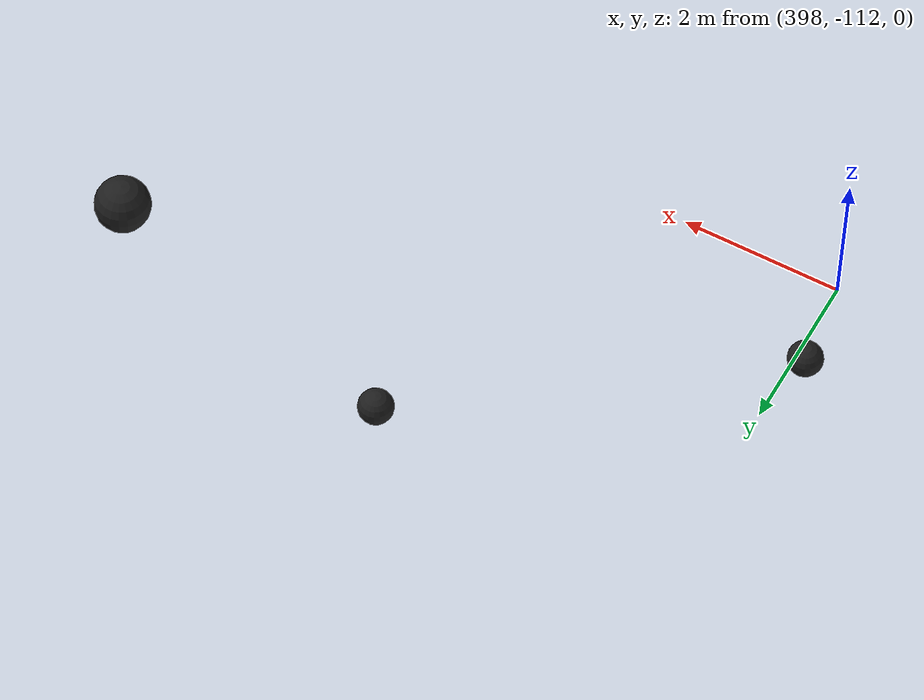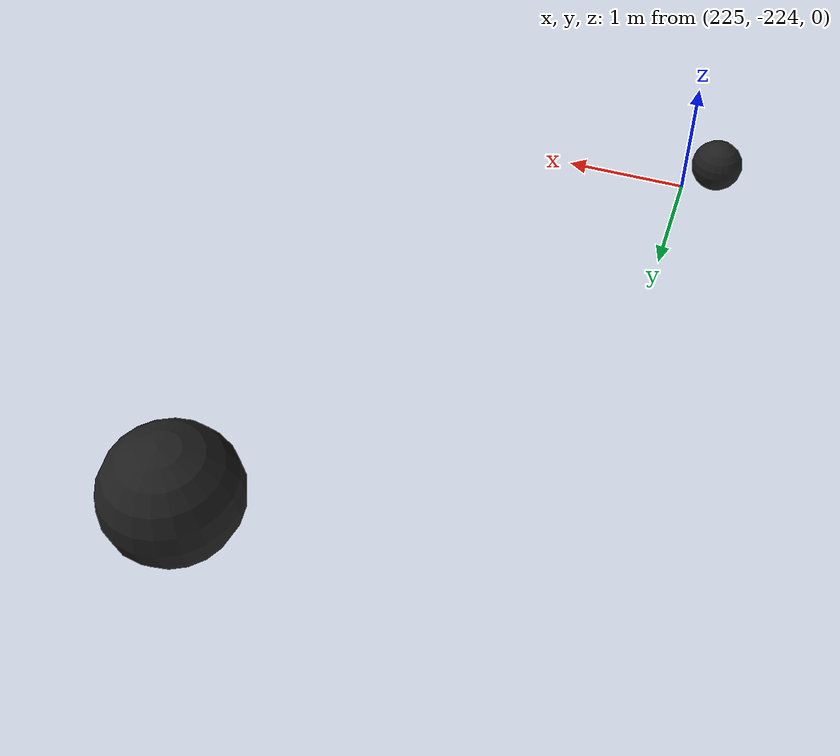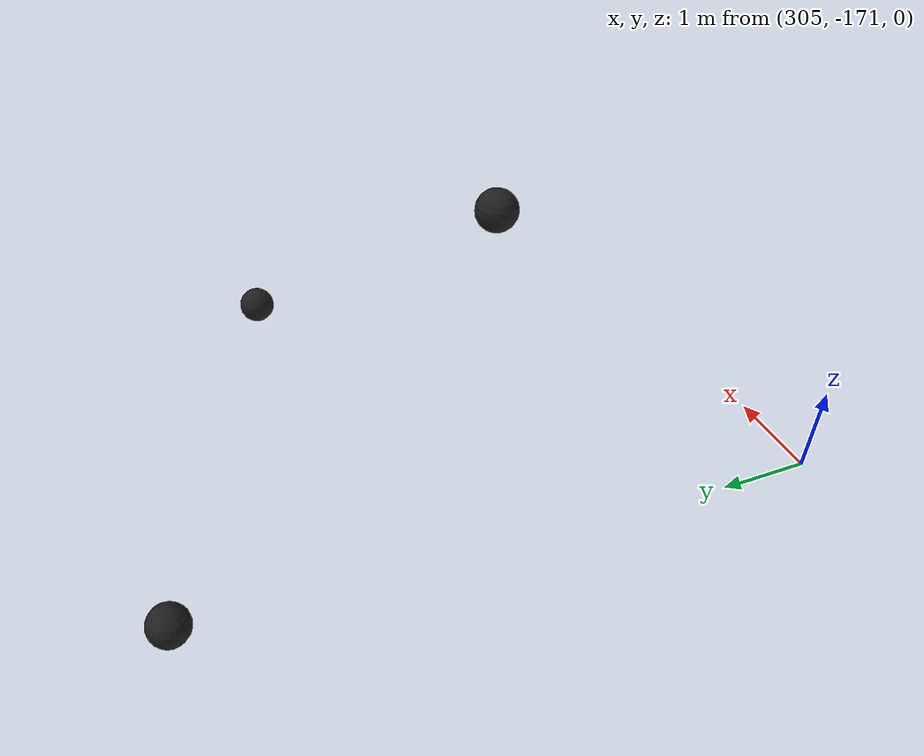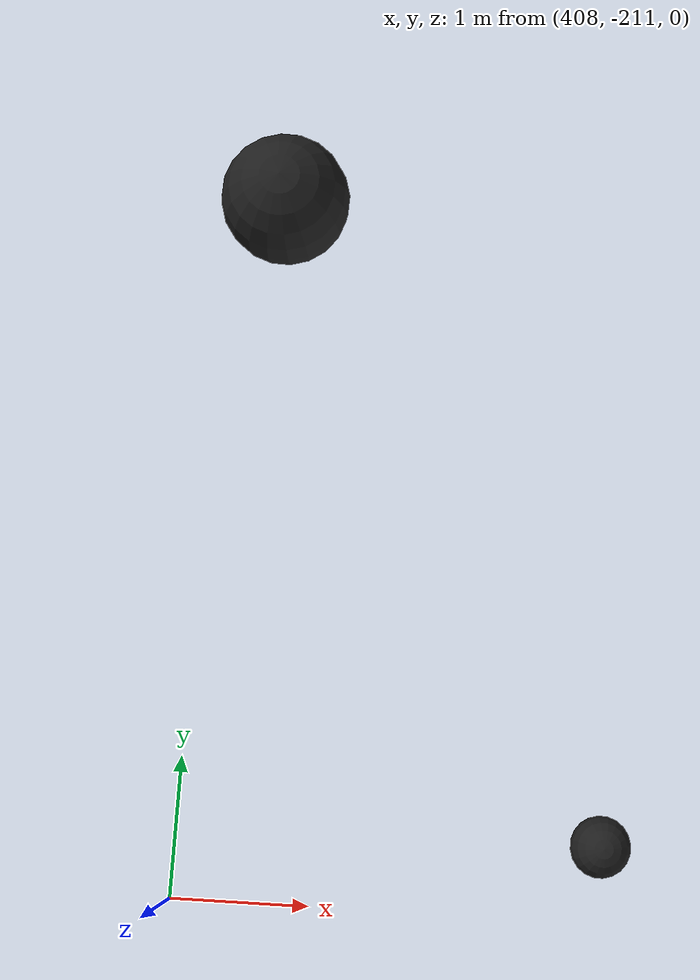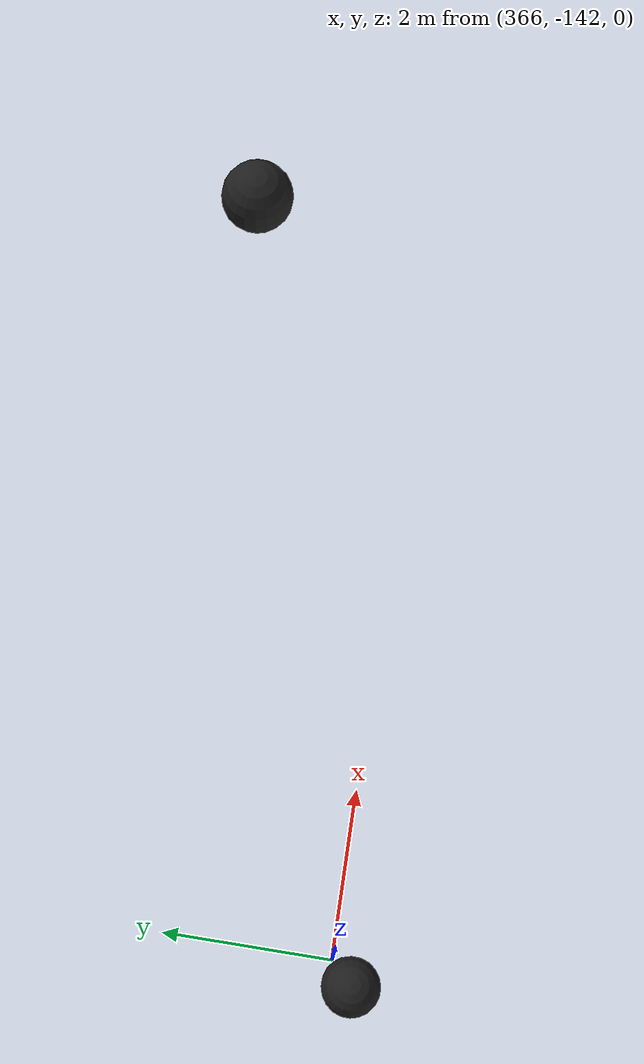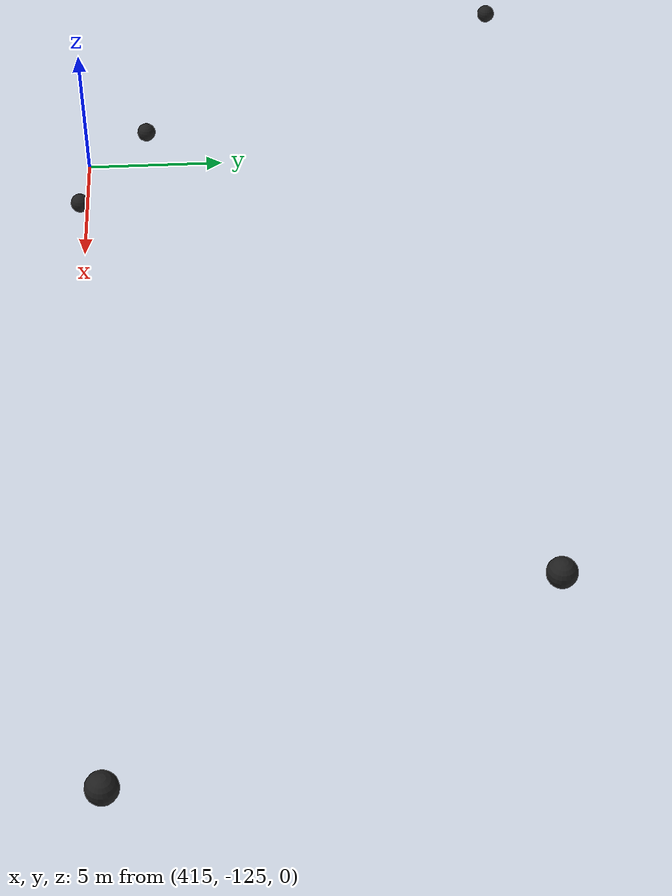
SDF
<sdf version="1.6">
 <world name="marina">
  <scene>
   <sky><clouds><speed>12</speed></clouds></sky>
   <grid>0</grid>
   <origin_visual>0</origin_visual>
   <ambient>0.4 0.4 0.4 1</ambient>
   <background>0.7 0.7 0.7 1</background>
   <shadows>1</shadows>
  </scene>
  <spherical_coordinates>
   <surface_model>EARTH_WGS84</surface_model>
   <world_frame_orientation>ENU</world_frame_orientation>
   <latitude_deg>44.0953</latitude_deg>
   <longitude_deg>9.82344</longitude_deg>
   <elevation>0</elevation>
   <heading_deg>0</heading_deg>
  </spherical_coordinates>
  <light name="sun" type="directional">
   <pose>0 0 10 0 -0 0</pose>
   <diffuse>0.8 0.8 0.8 1</diffuse>
   <specular>0.2 0.2 0.2 1</specular>
   <attenuation>
    <range>1000</range>
    <constant>0.9</constant>
    <linear>0.01</linear>
    <quadratic>0.001</quadratic>
   </attenuation>
   <direction>-0.5 0.1 -0.9</direction>
  </light>
  <plugin name="wind" filename="libusv_gazebo_wind_plugin.so">
   <wind_obj>
    <name>cora</name>
    <link_name>base_link</link_name>
    <coeff_vector>0.5 0.5 0.33</coeff_vector>
   </wind_obj>
   <wind_direction>270</wind_direction>
   <wind_mean_velocity>0</wind_mean_velocity>
   <var_wind_gain_constants>0</var_wind_gain_constants>
   <var_wind_time_constants>1</var_wind_time_constants>
   <update_rate>10</update_rate>
   <topic_wind_speed>/vorc/debug/wind/speed</topic_wind_speed>
   <topic_wind_direction>/vorc/debug/wind/direction</topic_wind_direction>
  </plugin>
  <gravity>0 0 -9.8</gravity>
  <magnetic_field>6e-06 2.3e-05 -4.2e-05</magnetic_field>
  <atmosphere type="adiabatic"/>
  <physics name="default_physics" default="0" type="ode">
   <max_step_size>0.001</max_step_size>
   <real_time_factor>1</real_time_factor>
   <real_time_update_rate>1000</real_time_update_rate>
  </physics>
  <model name="robotx_obstacle_course">
   <static>0</static>
   <link name="polyform_a3_0::base_link">
    <inertial>
     <mass>3.1</mass>
     <inertia><ixx>1</ixx><ixy>0</ixy><ixz>0</ixz><iyy>1</iyy><iyz>0</iyz><izz>1</izz></inertia>
    </inertial>
    <visual name="visual">
     <geometry><sphere><radius>0.216</radius></sphere></geometry>
     <material>
      <script><uri>file://media/materials/scripts/gazebo.material</uri><name>Gazebo/Black</name></script>
     </material>
    </visual>
    <collision name="collision"><geometry><sphere><radius>0.216</radius></sphere></geometry></collision>
    <pose>56.8485 59.2615 0 0 -0 0</pose>
   </link>
   <plugin name="BuoyancyPlugin" filename="libbuoyancy_gazebo_plugin.so">
    <wave_model>ocean_waves</wave_model>
    <fluid_density>1000</fluid_density>
    <fluid_level>0.0</fluid_level>
    <linear_drag>20.0</linear_drag>
    <angular_drag>2.0</angular_drag>
    <buoyancy name="buoyancy">
     <link_name>polyform_a3_0::base_link</link_name>
     <geometry><sphere><radius>0.216</radius></sphere></geometry>
    </buoyancy>
   </plugin>
   <static>0</static>
   <link name="polyform_a3_1::base_link">
    <inertial>
     <mass>3.1</mass>
     <inertia><ixx>1</ixx><ixy>0</ixy><ixz>0</ixz><iyy>1</iyy><iyz>0</iyz><izz>1</izz></inertia>
    </inertial>
    <visual name="visual">
     <geometry><sphere><radius>0.216</radius></sphere></geometry>
     <material>
      <script><uri>file://media/materials/scripts/gazebo.material</uri><name>Gazebo/Black</name></script>
     </material>
    </visual>
    <collision name="collision"><geometry><sphere><radius>0.216</radius></sphere></geometry></collision>
    <pose>56.9804 8.39663 0 0 -0 0</pose>
   </link>
   <plugin name="BuoyancyPlugin" filename="libbuoyancy_gazebo_plugin.so">
    <wave_model>ocean_waves</wave_model>
    <fluid_density>1000</fluid_density>
    <fluid_level>0.0</fluid_level>
    <linear_drag>20.0</linear_drag>
    <angular_drag>2.0</angular_drag>
    <buoyancy name="buoyancy">
     <link_name>polyform_a3_1::base_link</link_name>
     <geometry><sphere><radius>0.216</radius></sphere></geometry>
    </buoyancy>
   </plugin>
   <static>0</static>
   <link name="polyform_a3_2::base_link">
    <inertial>
     <mass>3.1</mass>
     <inertia><ixx>1</ixx><ixy>0</ixy><ixz>0</ixz><iyy>1</iyy><iyz>0</iyz><izz>1</izz></inertia>
    </inertial>
    <visual name="visual">
     <geometry><sphere><radius>0.216</radius></sphere></geometry>
     <material>
      <script><uri>file://media/materials/scripts/gazebo.material</uri><name>Gazebo/Black</name></script>
     </material>
    </visual>
    <collision name="collision"><geometry><sphere><radius>0.216</radius></sphere></geometry></collision>
    <pose>-39.9569 -59.638 0 0 -0 0</pose>
   </link>
   <plugin name="BuoyancyPlugin" filename="libbuoyancy_gazebo_plugin.so">
    <wave_model>ocean_waves</wave_model>
    <fluid_density>1000</fluid_density>
    <fluid_level>0.0</fluid_level>
    <linear_drag>20.0</linear_drag>
    <angular_drag>2.0</angular_drag>
    <buoyancy name="buoyancy">
     <link_name>polyform_a3_2::base_link</link_name>
     <geometry><sphere><radius>0.216</radius></sphere></geometry>
    </buoyancy>
   </plugin>
   <static>0</static>
   <link name="polyform_a3_3::base_link">
    <inertial>
     <mass>3.1</mass>
     <inertia><ixx>1</ixx><ixy>0</ixy><ixz>0</ixz><iyy>1</iyy><iyz>0</iyz><izz>1</izz></inertia>
    </inertial>
    <visual name="visual">
     <geometry><sphere><radius>0.216</radius></sphere></geometry>
     <material>
      <script><uri>file://media/materials/scripts/gazebo.material</uri><name>Gazebo/Black</name></script>
     </material>
    </visual>
    <collision name="collision"><geometry><sphere><radius>0.216</radius></sphere></geometry></collision>
    <pose>40.5936 0.420856 0 0 -0 0</pose>
   </link>
   <plugin name="BuoyancyPlugin" filename="libbuoyancy_gazebo_plugin.so">
    <wave_model>ocean_waves</wave_model>
    <fluid_density>1000</fluid_density>
    <fluid_level>0.0</fluid_level>
    <linear_drag>20.0</linear_drag>
    <angular_drag>2.0</angular_drag>
    <buoyancy name="buoyancy">
     <link_name>polyform_a3_3::base_link</link_name>
     <geometry><sphere><radius>0.216</radius></sphere></geometry>
    </buoyancy>
   </plugin>
   <static>0</static>
   <link name="polyform_a3_4::base_link">
    <inertial>
     <mass>3.1</mass>
     <inertia><ixx>1</ixx><ixy>0</ixy><ixz>0</ixz><iyy>1</iyy><iyz>0</iyz><izz>1</izz></inertia>
    </inertial>
    <visual name="visual">
     <geometry><sphere><radius>0.216</radius></sphere></geometry>
     <material>
      <script><uri>file://media/materials/scripts/gazebo.material</uri><name>Gazebo/Black</name></script>
     </material>
    </visual>
    <collision name="collision"><geometry><sphere><radius>0.216</radius></sphere></geometry></collision>
    <pose>45.1472 -1.58775 0 0 -0 0</pose>
   </link>
   <plugin name="BuoyancyPlugin" filename="libbuoyancy_gazebo_plugin.so">
    <wave_model>ocean_waves</wave_model>
    <fluid_density>1000</fluid_density>
    <fluid_level>0.0</fluid_level>
    <linear_drag>20.0</linear_drag>
    <angular_drag>2.0</angular_drag>
    <buoyancy name="buoyancy">
     <link_name>polyform_a3_4::base_link</link_name>
     <geometry><sphere><radius>0.216</radius></sphere></geometry>
    </buoyancy>
   </plugin>
   <static>0</static>
   <link name="polyform_a5_0::base_link">
    <inertial>
     <mass>8.98</mass>
     <inertia><ixx>1</ixx><ixy>0</ixy><ixz>0</ixz><iyy>1</iyy><iyz>0</iyz><izz>1</izz></inertia>
    </inertial>
    <visual name="visual">
     <geometry><sphere><radius>0.343</radius></sphere></geometry>
     <material>
      <script><uri>file://media/materials/scripts/gazebo.material</uri><name>Gazebo/Black</name></script>
     </material>
    </visual>
    <collision name="collision"><geometry><sphere><radius>0.343</radius></sphere></geometry></collision>
    <pose>37.4966 -23.6252 0 0 -0 0</pose>
   </link>
   <plugin name="BuoyancyPlugin" filename="libbuoyancy_gazebo_plugin.so">
    <wave_model>ocean_waves</wave_model>
    <fluid_density>1000</fluid_density>
    <fluid_level>0.0</fluid_level>
    <linear_drag>20.0</linear_drag>
    <angular_drag>2.0</angular_drag>
    <buoyancy name="buoyancy">
     <link_name>polyform_a5_0::base_link</link_name>
     <geometry><sphere><radius>0.343</radius></sphere></geometry>
    </buoyancy>
   </plugin>
   <static>0</static>
   <link name="polyform_a5_1::base_link">
    <inertial>
     <mass>8.98</mass>
     <inertia><ixx>1</ixx><ixy>0</ixy><ixz>0</ixz><iyy>1</iyy><iyz>0</iyz><izz>1</izz></inertia>
    </inertial>
    <visual name="visual">
     <geometry><sphere><radius>0.343</radius></sphere></geometry>
     <material>
      <script><uri>file://media/materials/scripts/gazebo.material</uri><name>Gazebo/Black</name></script>
     </material>
    </visual>
    <collision name="collision"><geometry><sphere><radius>0.343</radius></sphere></geometry></collision>
    <pose>46.2135 -5.59469 0 0 -0 0</pose>
   </link>
   <plugin name="BuoyancyPlugin" filename="libbuoyancy_gazebo_plugin.so">
    <wave_model>ocean_waves</wave_model>
    <fluid_density>1000</fluid_density>
    <fluid_level>0.0</fluid_level>
    <linear_drag>20.0</linear_drag>
    <angular_drag>2.0</angular_drag>
    <buoyancy name="buoyancy">
     <link_name>polyform_a5_1::base_link</link_name>
     <geometry><sphere><radius>0.343</radius></sphere></geometry>
    </buoyancy>
   </plugin>
   <static>0</static>
   <link name="polyform_a5_2::base_link">
    <inertial>
     <mass>8.98</mass>
     <inertia><ixx>1</ixx><ixy>0</ixy><ixz>0</ixz><iyy>1</iyy><iyz>0</iyz><izz>1</izz></inertia>
    </inertial>
    <visual name="visual">
     <geometry><sphere><radius>0.343</radius></sphere></geometry>
     <material>
      <script><uri>file://media/materials/scripts/gazebo.material</uri><name>Gazebo/Black</name></script>
     </material>
    </visual>
    <collision name="collision"><geometry><sphere><radius>0.343</radius></sphere></geometry></collision>
    <pose>24.5769 30.3481 0 0 -0 0</pose>
   </link>
   <plugin name="BuoyancyPlugin" filename="libbuoyancy_gazebo_plugin.so">
    <wave_model>ocean_waves</wave_model>
    <fluid_density>1000</fluid_density>
    <fluid_level>0.0</fluid_level>
    <linear_drag>20.0</linear_drag>
    <angular_drag>2.0</angular_drag>
    <buoyancy name="buoyancy">
     <link_name>polyform_a5_2::base_link</link_name>
     <geometry><sphere><radius>0.343</radius></sphere></geometry>
    </buoyancy>
   </plugin>
   <static>0</static>
   <link name="polyform_a5_3::base_link">
    <inertial>
     <mass>8.98</mass>
     <inertia><ixx>1</ixx><ixy>0</ixy><ixz>0</ixz><iyy>1</iyy><iyz>0</iyz><izz>1</izz></inertia>
    </inertial>
    <visual name="visual">
     <geometry><sphere><radius>0.343</radius></sphere></geometry>
     <material>
      <script><uri>file://media/materials/scripts/gazebo.material</uri><name>Gazebo/Black</name></script>
     </material>
    </visual>
    <collision name="collision"><geometry><sphere><radius>0.343</radius></sphere></geometry></collision>
    <pose>37.5737 -18.8336 0 0 -0 0</pose>
   </link>
   <plugin name="BuoyancyPlugin" filename="libbuoyancy_gazebo_plugin.so">
    <wave_model>ocean_waves</wave_model>
    <fluid_density>1000</fluid_density>
    <fluid_level>0.0</fluid_level>
    <linear_drag>20.0</linear_drag>
    <angular_drag>2.0</angular_drag>
    <buoyancy name="buoyancy">
     <link_name>polyform_a5_3::base_link</link_name>
     <geometry><sphere><radius>0.343</radius></sphere></geometry>
    </buoyancy>
   </plugin>
   <static>0</static>
   <link name="polyform_a5_4::base_link">
    <inertial>
     <mass>8.98</mass>
     <inertia><ixx>1</ixx><ixy>0</ixy><ixz>0</ixz><iyy>1</iyy><iyz>0</iyz><izz>1</izz></inertia>
    </inertial>
    <visual name="visual">
     <geometry><sphere><radius>0.343</radius></sphere></geometry>
     <material>
      <script><uri>file://media/materials/scripts/gazebo.material</uri><name>Gazebo/Black</name></script>
     </material>
    </visual>
    <collision name="collision"><geometry><sphere><radius>0.343</radius></sphere></geometry></collision>
    <pose>-2.49572 13.1619 0 0 -0 0</pose>
   </link>
   <plugin name="BuoyancyPlugin" filename="libbuoyancy_gazebo_plugin.so">
    <wave_model>ocean_waves</wave_model>
    <fluid_density>1000</fluid_density>
    <fluid_level>0.0</fluid_level>
    <linear_drag>20.0</linear_drag>
    <angular_drag>2.0</angular_drag>
    <buoyancy name="buoyancy">
     <link_name>polyform_a5_4::base_link</link_name>
     <geometry><sphere><radius>0.343</radius></sphere></geometry>
    </buoyancy>
   </plugin>
   <static>0</static>
   <link name="polyform_a7_0::base_link">
    <inertial>
     <mass>24.49</mass>
     <inertia><ixx>1</ixx><ixy>0</ixy><ixz>0</ixz><iyy>1</iyy><iyz>0</iyz><izz>1</izz></inertia>
    </inertial>
    <visual name="visual">
     <geometry><sphere><radius>0.4955</radius></sphere></geometry>
     <material>
      <script><uri>file://media/materials/scripts/gazebo.material</uri><name>Gazebo/Black</name></script>
     </material>
    </visual>
    <collision name="collision"><geometry><sphere><radius>0.4955</radius></sphere></geometry></collision>
    <pose>59.6286 -32.2044 0 0 -0 0</pose>
   </link>
   <plugin name="BuoyancyPlugin" filename="libbuoyancy_gazebo_plugin.so">
    <wave_model>ocean_waves</wave_model>
    <fluid_density>1000</fluid_density>
    <fluid_level>0.0</fluid_level>
    <linear_drag>20.0</linear_drag>
    <angular_drag>2.0</angular_drag>
    <buoyancy name="buoyancy">
     <link_name>polyform_a7_0::base_link</link_name>
     <geometry><sphere><radius>0.4955</radius></sphere></geometry>
    </buoyancy>
   </plugin>
   <static>0</static>
   <link name="polyform_a7_1::base_link">
    <inertial>
     <mass>24.49</mass>
     <inertia><ixx>1</ixx><ixy>0</ixy><ixz>0</ixz><iyy>1</iyy><iyz>0</iyz><izz>1</izz></inertia>
    </inertial>
    <visual name="visual">
     <geometry><sphere><radius>0.4955</radius></sphere></geometry>
     <material>
      <script><uri>file://media/materials/scripts/gazebo.material</uri><name>Gazebo/Black</name></script>
     </material>
    </visual>
    <collision name="collision"><geometry><sphere><radius>0.4955</radius></sphere></geometry></collision>
    <pose>51.0184 -44.8771 0 0 -0 0</pose>
   </link>
   <plugin name="BuoyancyPlugin" filename="libbuoyancy_gazebo_plugin.so">
    <wave_model>ocean_waves</wave_model>
    <fluid_density>1000</fluid_density>
    <fluid_level>0.0</fluid_level>
    <linear_drag>20.0</linear_drag>
    <angular_drag>2.0</angular_drag>
    <buoyancy name="buoyancy">
     <link_name>polyform_a7_1::base_link</link_name>
     <geometry><sphere><radius>0.4955</radius></sphere></geometry>
    </buoyancy>
   </plugin>
   <static>0</static>
   <link name="polyform_a7_2::base_link">
    <inertial>
     <mass>24.49</mass>
     <inertia><ixx>1</ixx><ixy>0</ixy><ixz>0</ixz><iyy>1</iyy><iyz>0</iyz><izz>1</izz></inertia>
    </inertial>
    <visual name="visual">
     <geometry><sphere><radius>0.4955</radius></sphere></geometry>
     <material>
      <script><uri>file://media/materials/scripts/gazebo.material</uri><name>Gazebo/Black</name></script>
     </material>
    </visual>
    <collision name="collision"><geometry><sphere><radius>0.4955</radius></sphere></geometry></collision>
    <pose>-37.1238 -55.0781 0 0 -0 0</pose>
   </link>
   <plugin name="BuoyancyPlugin" filename="libbuoyancy_gazebo_plugin.so">
    <wave_model>ocean_waves</wave_model>
    <fluid_density>1000</fluid_density>
    <fluid_level>0.0</fluid_level>
    <linear_drag>20.0</linear_drag>
    <angular_drag>2.0</angular_drag>
    <buoyancy name="buoyancy">
     <link_name>polyform_a7_2::base_link</link_name>
     <geometry><sphere><radius>0.4955</radius></sphere></geometry>
    </buoyancy>
   </plugin>
   <static>0</static>
   <link name="polyform_a7_3::base_link">
    <inertial>
     <mass>24.49</mass>
     <inertia><ixx>1</ixx><ixy>0</ixy><ixz>0</ixz><iyy>1</iyy><iyz>0</iyz><izz>1</izz></inertia>
    </inertial>
    <visual name="visual">
     <geometry><sphere><radius>0.4955</radius></sphere></geometry>
     <material>
      <script><uri>file://media/materials/scripts/gazebo.material</uri><name>Gazebo/Black</name></script>
     </material>
    </visual>
    <collision name="collision"><geometry><sphere><radius>0.4955</radius></sphere></geometry></collision>
    <pose>4.82024 5.70283 0 0 -0 0</pose>
   </link>
   <plugin name="BuoyancyPlugin" filename="libbuoyancy_gazebo_plugin.so">
    <wave_model>ocean_waves</wave_model>
    <fluid_density>1000</fluid_density>
    <fluid_level>0.0</fluid_level>
    <linear_drag>20.0</linear_drag>
    <angular_drag>2.0</angular_drag>
    <buoyancy name="buoyancy">
     <link_name>polyform_a7_3::base_link</link_name>
     <geometry><sphere><radius>0.4955</radius></sphere></geometry>
    </buoyancy>
   </plugin>
   <static>0</static>
   <link name="polyform_a7_4::base_link">
    <inertial>
     <mass>24.49</mass>
     <inertia><ixx>1</ixx><ixy>0</ixy><ixz>0</ixz><iyy>1</iyy><iyz>0</iyz><izz>1</izz></inertia>
    </inertial>
    <visual name="visual">
     <geometry><sphere><radius>0.4955</radius></sphere></geometry>
     <material>
      <script><uri>file://media/materials/scripts/gazebo.material</uri><name>Gazebo/Black</name></script>
     </material>
    </visual>
    <collision name="collision"><geometry><sphere><radius>0.4955</radius></sphere></geometry></collision>
    <pose>-10.727 -31.6245 0 0 -0 0</pose>
   </link>
   <plugin name="BuoyancyPlugin" filename="libbuoyancy_gazebo_plugin.so">
    <wave_model>ocean_waves</wave_model>
    <fluid_density>1000</fluid_density>
    <fluid_level>0.0</fluid_level>
    <linear_drag>20.0</linear_drag>
    <angular_drag>2.0</angular_drag>
    <buoyancy name="buoyancy">
     <link_name>polyform_a7_4::base_link</link_name>
     <geometry><sphere><radius>0.4955</radius></sphere></geometry>
    </buoyancy>
   </plugin>
   <pose>264.708 -164.565 0.143229 0 -0 0</pose>
  </model>
  <model name="robotx_obstacle_course_0">
   <static>0</static>
   <link name="polyform_a3_0::base_link">
    <inertial>
     <mass>3.1</mass>
     <inertia><ixx>1</ixx><ixy>0</ixy><ixz>0</ixz><iyy>1</iyy><iyz>0</iyz><izz>1</izz></inertia>
    </inertial>
    <visual name="visual">
     <geometry><sphere><radius>0.216</radius></sphere></geometry>
     <material>
      <script><uri>file://media/materials/scripts/gazebo.material</uri><name>Gazebo/Black</name></script>
     </material>
    </visual>
    <collision name="collision"><geometry><sphere><radius>0.216</radius></sphere></geometry></collision>
    <pose>56.8485 59.2615 0 0 -0 0</pose>
   </link>
   <plugin name="BuoyancyPlugin" filename="libbuoyancy_gazebo_plugin.so">
    <wave_model>ocean_waves</wave_model>
    <fluid_density>1000</fluid_density>
    <fluid_level>0.0</fluid_level>
    <linear_drag>20.0</linear_drag>
    <angular_drag>2.0</angular_drag>
    <buoyancy name="buoyancy">
     <link_name>polyform_a3_0::base_link</link_name>
     <geometry><sphere><radius>0.216</radius></sphere></geometry>
    </buoyancy>
   </plugin>
   <static>0</static>
   <link name="polyform_a3_1::base_link">
    <inertial>
     <mass>3.1</mass>
     <inertia><ixx>1</ixx><ixy>0</ixy><ixz>0</ixz><iyy>1</iyy><iyz>0</iyz><izz>1</izz></inertia>
    </inertial>
    <visual name="visual">
     <geometry><sphere><radius>0.216</radius></sphere></geometry>
     <material>
      <script><uri>file://media/materials/scripts/gazebo.material</uri><name>Gazebo/Black</name></script>
     </material>
    </visual>
    <collision name="collision"><geometry><sphere><radius>0.216</radius></sphere></geometry></collision>
    <pose>56.9804 8.39663 0 0 -0 0</pose>
   </link>
   <plugin name="BuoyancyPlugin" filename="libbuoyancy_gazebo_plugin.so">
    <wave_model>ocean_waves</wave_model>
    <fluid_density>1000</fluid_density>
    <fluid_level>0.0</fluid_level>
    <linear_drag>20.0</linear_drag>
    <angular_drag>2.0</angular_drag>
    <buoyancy name="buoyancy">
     <link_name>polyform_a3_1::base_link</link_name>
     <geometry><sphere><radius>0.216</radius></sphere></geometry>
    </buoyancy>
   </plugin>
   <static>0</static>
   <link name="polyform_a3_2::base_link">
    <inertial>
     <mass>3.1</mass>
     <inertia><ixx>1</ixx><ixy>0</ixy><ixz>0</ixz><iyy>1</iyy><iyz>0</iyz><izz>1</izz></inertia>
    </inertial>
    <visual name="visual">
     <geometry><sphere><radius>0.216</radius></sphere></geometry>
     <material>
      <script><uri>file://media/materials/scripts/gazebo.material</uri><name>Gazebo/Black</name></script>
     </material>
    </visual>
    <collision name="collision"><geometry><sphere><radius>0.216</radius></sphere></geometry></collision>
    <pose>-39.9569 -59.638 0 0 -0 0</pose>
   </link>
   <plugin name="BuoyancyPlugin" filename="libbuoyancy_gazebo_plugin.so">
    <wave_model>ocean_waves</wave_model>
    <fluid_density>1000</fluid_density>
    <fluid_level>0.0</fluid_level>
    <linear_drag>20.0</linear_drag>
    <angular_drag>2.0</angular_drag>
    <buoyancy name="buoyancy">
     <link_name>polyform_a3_2::base_link</link_name>
     <geometry><sphere><radius>0.216</radius></sphere></geometry>
    </buoyancy>
   </plugin>
   <static>0</static>
   <link name="polyform_a3_3::base_link">
    <inertial>
     <mass>3.1</mass>
     <inertia><ixx>1</ixx><ixy>0</ixy><ixz>0</ixz><iyy>1</iyy><iyz>0</iyz><izz>1</izz></inertia>
    </inertial>
    <visual name="visual">
     <geometry><sphere><radius>0.216</radius></sphere></geometry>
     <material>
      <script><uri>file://media/materials/scripts/gazebo.material</uri><name>Gazebo/Black</name></script>
     </material>
    </visual>
    <collision name="collision"><geometry><sphere><radius>0.216</radius></sphere></geometry></collision>
    <pose>40.5936 0.420856 0 0 -0 0</pose>
   </link>
   <plugin name="BuoyancyPlugin" filename="libbuoyancy_gazebo_plugin.so">
    <wave_model>ocean_waves</wave_model>
    <fluid_density>1000</fluid_density>
    <fluid_level>0.0</fluid_level>
    <linear_drag>20.0</linear_drag>
    <angular_drag>2.0</angular_drag>
    <buoyancy name="buoyancy">
     <link_name>polyform_a3_3::base_link</link_name>
     <geometry><sphere><radius>0.216</radius></sphere></geometry>
    </buoyancy>
   </plugin>
   <static>0</static>
   <link name="polyform_a3_4::base_link">
    <inertial>
     <mass>3.1</mass>
     <inertia><ixx>1</ixx><ixy>0</ixy><ixz>0</ixz><iyy>1</iyy><iyz>0</iyz><izz>1</izz></inertia>
    </inertial>
    <visual name="visual">
     <geometry><sphere><radius>0.216</radius></sphere></geometry>
     <material>
      <script><uri>file://media/materials/scripts/gazebo.material</uri><name>Gazebo/Black</name></script>
     </material>
    </visual>
    <collision name="collision"><geometry><sphere><radius>0.216</radius></sphere></geometry></collision>
    <pose>45.1472 -1.58775 0 0 -0 0</pose>
   </link>
   <plugin name="BuoyancyPlugin" filename="libbuoyancy_gazebo_plugin.so">
    <wave_model>ocean_waves</wave_model>
    <fluid_density>1000</fluid_density>
    <fluid_level>0.0</fluid_level>
    <linear_drag>20.0</linear_drag>
    <angular_drag>2.0</angular_drag>
    <buoyancy name="buoyancy">
     <link_name>polyform_a3_4::base_link</link_name>
     <geometry><sphere><radius>0.216</radius></sphere></geometry>
    </buoyancy>
   </plugin>
   <static>0</static>
   <link name="polyform_a5_0::base_link">
    <inertial>
     <mass>8.98</mass>
     <inertia><ixx>1</ixx><ixy>0</ixy><ixz>0</ixz><iyy>1</iyy><iyz>0</iyz><izz>1</izz></inertia>
    </inertial>
    <visual name="visual">
     <geometry><sphere><radius>0.343</radius></sphere></geometry>
     <material>
      <script><uri>file://media/materials/scripts/gazebo.material</uri><name>Gazebo/Black</name></script>
     </material>
    </visual>
    <collision name="collision"><geometry><sphere><radius>0.343</radius></sphere></geometry></collision>
    <pose>37.4966 -23.6252 0 0 -0 0</pose>
   </link>
   <plugin name="BuoyancyPlugin" filename="libbuoyancy_gazebo_plugin.so">
    <wave_model>ocean_waves</wave_model>
    <fluid_density>1000</fluid_density>
    <fluid_level>0.0</fluid_level>
    <linear_drag>20.0</linear_drag>
    <angular_drag>2.0</angular_drag>
    <buoyancy name="buoyancy">
     <link_name>polyform_a5_0::base_link</link_name>
     <geometry><sphere><radius>0.343</radius></sphere></geometry>
    </buoyancy>
   </plugin>
   <static>0</static>
   <link name="polyform_a5_1::base_link">
    <inertial>
     <mass>8.98</mass>
     <inertia><ixx>1</ixx><ixy>0</ixy><ixz>0</ixz><iyy>1</iyy><iyz>0</iyz><izz>1</izz></inertia>
    </inertial>
    <visual name="visual">
     <geometry><sphere><radius>0.343</radius></sphere></geometry>
     <material>
      <script><uri>file://media/materials/scripts/gazebo.material</uri><name>Gazebo/Black</name></script>
     </material>
    </visual>
    <collision name="collision"><geometry><sphere><radius>0.343</radius></sphere></geometry></collision>
    <pose>46.2135 -5.59469 0 0 -0 0</pose>
   </link>
   <plugin name="BuoyancyPlugin" filename="libbuoyancy_gazebo_plugin.so">
    <wave_model>ocean_waves</wave_model>
    <fluid_density>1000</fluid_density>
    <fluid_level>0.0</fluid_level>
    <linear_drag>20.0</linear_drag>
    <angular_drag>2.0</angular_drag>
    <buoyancy name="buoyancy">
     <link_name>polyform_a5_1::base_link</link_name>
     <geometry><sphere><radius>0.343</radius></sphere></geometry>
    </buoyancy>
   </plugin>
   <static>0</static>
   <link name="polyform_a5_2::base_link">
    <inertial>
     <mass>8.98</mass>
     <inertia><ixx>1</ixx><ixy>0</ixy><ixz>0</ixz><iyy>1</iyy><iyz>0</iyz><izz>1</izz></inertia>
    </inertial>
    <visual name="visual">
     <geometry><sphere><radius>0.343</radius></sphere></geometry>
     <material>
      <script><uri>file://media/materials/scripts/gazebo.material</uri><name>Gazebo/Black</name></script>
     </material>
    </visual>
    <collision name="collision"><geometry><sphere><radius>0.343</radius></sphere></geometry></collision>
    <pose>24.5769 30.3481 0 0 -0 0</pose>
   </link>
   <plugin name="BuoyancyPlugin" filename="libbuoyancy_gazebo_plugin.so">
    <wave_model>ocean_waves</wave_model>
    <fluid_density>1000</fluid_density>
    <fluid_level>0.0</fluid_level>
    <linear_drag>20.0</linear_drag>
    <angular_drag>2.0</angular_drag>
    <buoyancy name="buoyancy">
     <link_name>polyform_a5_2::base_link</link_name>
     <geometry><sphere><radius>0.343</radius></sphere></geometry>
    </buoyancy>
   </plugin>
   <static>0</static>
   <link name="polyform_a5_3::base_link">
    <inertial>
     <mass>8.98</mass>
     <inertia><ixx>1</ixx><ixy>0</ixy><ixz>0</ixz><iyy>1</iyy><iyz>0</iyz><izz>1</izz></inertia>
    </inertial>
    <visual name="visual">
     <geometry><sphere><radius>0.343</radius></sphere></geometry>
     <material>
      <script><uri>file://media/materials/scripts/gazebo.material</uri><name>Gazebo/Black</name></script>
     </material>
    </visual>
    <collision name="collision"><geometry><sphere><radius>0.343</radius></sphere></geometry></collision>
    <pose>37.5737 -18.8336 0 0 -0 0</pose>
   </link>
   <plugin name="BuoyancyPlugin" filename="libbuoyancy_gazebo_plugin.so">
    <wave_model>ocean_waves</wave_model>
    <fluid_density>1000</fluid_density>
    <fluid_level>0.0</fluid_level>
    <linear_drag>20.0</linear_drag>
    <angular_drag>2.0</angular_drag>
    <buoyancy name="buoyancy">
     <link_name>polyform_a5_3::base_link</link_name>
     <geometry><sphere><radius>0.343</radius></sphere></geometry>
    </buoyancy>
   </plugin>
   <static>0</static>
   <link name="polyform_a5_4::base_link">
    <inertial>
     <mass>8.98</mass>
     <inertia><ixx>1</ixx><ixy>0</ixy><ixz>0</ixz><iyy>1</iyy><iyz>0</iyz><izz>1</izz></inertia>
    </inertial>
    <visual name="visual">
     <geometry><sphere><radius>0.343</radius></sphere></geometry>
     <material>
      <script><uri>file://media/materials/scripts/gazebo.material</uri><name>Gazebo/Black</name></script>
     </material>
    </visual>
    <collision name="collision"><geometry><sphere><radius>0.343</radius></sphere></geometry></collision>
    <pose>-2.49572 13.1619 0 0 -0 0</pose>
   </link>
   <plugin name="BuoyancyPlugin" filename="libbuoyancy_gazebo_plugin.so">
    <wave_model>ocean_waves</wave_model>
    <fluid_density>1000</fluid_density>
    <fluid_level>0.0</fluid_level>
    <linear_drag>20.0</linear_drag>
    <angular_drag>2.0</angular_drag>
    <buoyancy name="buoyancy">
     <link_name>polyform_a5_4::base_link</link_name>
     <geometry><sphere><radius>0.343</radius></sphere></geometry>
    </buoyancy>
   </plugin>
   <static>0</static>
   <link name="polyform_a7_0::base_link">
    <inertial>
     <mass>24.49</mass>
     <inertia><ixx>1</ixx><ixy>0</ixy><ixz>0</ixz><iyy>1</iyy><iyz>0</iyz><izz>1</izz></inertia>
    </inertial>
    <visual name="visual">
     <geometry><sphere><radius>0.4955</radius></sphere></geometry>
     <material>
      <script><uri>file://media/materials/scripts/gazebo.material</uri><name>Gazebo/Black</name></script>
     </material>
    </visual>
    <collision name="collision"><geometry><sphere><radius>0.4955</radius></sphere></geometry></collision>
    <pose>59.6286 -32.2044 0 0 -0 0</pose>
   </link>
   <plugin name="BuoyancyPlugin" filename="libbuoyancy_gazebo_plugin.so">
    <wave_model>ocean_waves</wave_model>
    <fluid_density>1000</fluid_density>
    <fluid_level>0.0</fluid_level>
    <linear_drag>20.0</linear_drag>
    <angular_drag>2.0</angular_drag>
    <buoyancy name="buoyancy">
     <link_name>polyform_a7_0::base_link</link_name>
     <geometry><sphere><radius>0.4955</radius></sphere></geometry>
    </buoyancy>
   </plugin>
   <static>0</static>
   <link name="polyform_a7_1::base_link">
    <inertial>
     <mass>24.49</mass>
     <inertia><ixx>1</ixx><ixy>0</ixy><ixz>0</ixz><iyy>1</iyy><iyz>0</iyz><izz>1</izz></inertia>
    </inertial>
    <visual name="visual">
     <geometry><sphere><radius>0.4955</radius></sphere></geometry>
     <material>
      <script><uri>file://media/materials/scripts/gazebo.material</uri><name>Gazebo/Black</name></script>
     </material>
    </visual>
    <collision name="collision"><geometry><sphere><radius>0.4955</radius></sphere></geometry></collision>
    <pose>51.0184 -44.8771 0 0 -0 0</pose>
   </link>
   <plugin name="BuoyancyPlugin" filename="libbuoyancy_gazebo_plugin.so">
    <wave_model>ocean_waves</wave_model>
    <fluid_density>1000</fluid_density>
    <fluid_level>0.0</fluid_level>
    <linear_drag>20.0</linear_drag>
    <angular_drag>2.0</angular_drag>
    <buoyancy name="buoyancy">
     <link_name>polyform_a7_1::base_link</link_name>
     <geometry><sphere><radius>0.4955</radius></sphere></geometry>
    </buoyancy>
   </plugin>
   <static>0</static>
   <link name="polyform_a7_2::base_link">
    <inertial>
     <mass>24.49</mass>
     <inertia><ixx>1</ixx><ixy>0</ixy><ixz>0</ixz><iyy>1</iyy><iyz>0</iyz><izz>1</izz></inertia>
    </inertial>
    <visual name="visual">
     <geometry><sphere><radius>0.4955</radius></sphere></geometry>
     <material>
      <script><uri>file://media/materials/scripts/gazebo.material</uri><name>Gazebo/Black</name></script>
     </material>
    </visual>
    <collision name="collision"><geometry><sphere><radius>0.4955</radius></sphere></geometry></collision>
    <pose>-37.1238 -55.0781 0 0 -0 0</pose>
   </link>
   <plugin name="BuoyancyPlugin" filename="libbuoyancy_gazebo_plugin.so">
    <wave_model>ocean_waves</wave_model>
    <fluid_density>1000</fluid_density>
    <fluid_level>0.0</fluid_level>
    <linear_drag>20.0</linear_drag>
    <angular_drag>2.0</angular_drag>
    <buoyancy name="buoyancy">
     <link_name>polyform_a7_2::base_link</link_name>
     <geometry><sphere><radius>0.4955</radius></sphere></geometry>
    </buoyancy>
   </plugin>
   <static>0</static>
   <link name="polyform_a7_3::base_link">
    <inertial>
     <mass>24.49</mass>
     <inertia><ixx>1</ixx><ixy>0</ixy><ixz>0</ixz><iyy>1</iyy><iyz>0</iyz><izz>1</izz></inertia>
    </inertial>
    <visual name="visual">
     <geometry><sphere><radius>0.4955</radius></sphere></geometry>
     <material>
      <script><uri>file://media/materials/scripts/gazebo.material</uri><name>Gazebo/Black</name></script>
     </material>
    </visual>
    <collision name="collision"><geometry><sphere><radius>0.4955</radius></sphere></geometry></collision>
    <pose>4.82024 5.70283 0 0 -0 0</pose>
   </link>
   <plugin name="BuoyancyPlugin" filename="libbuoyancy_gazebo_plugin.so">
    <wave_model>ocean_waves</wave_model>
    <fluid_density>1000</fluid_density>
    <fluid_level>0.0</fluid_level>
    <linear_drag>20.0</linear_drag>
    <angular_drag>2.0</angular_drag>
    <buoyancy name="buoyancy">
     <link_name>polyform_a7_3::base_link</link_name>
     <geometry><sphere><radius>0.4955</radius></sphere></geometry>
    </buoyancy>
   </plugin>
   <static>0</static>
   <link name="polyform_a7_4::base_link">
    <inertial>
     <mass>24.49</mass>
     <inertia><ixx>1</ixx><ixy>0</ixy><ixz>0</ixz><iyy>1</iyy><iyz>0</iyz><izz>1</izz></inertia>
    </inertial>
    <visual name="visual">
     <geometry><sphere><radius>0.4955</radius></sphere></geometry>
     <material>
      <script><uri>file://media/materials/scripts/gazebo.material</uri><name>Gazebo/Black</name></script>
     </material>
    </visual>
    <collision name="collision"><geometry><sphere><radius>0.4955</radius></sphere></geometry></collision>
    <pose>-10.727 -31.6245 0 0 -0 0</pose>
   </link>
   <plugin name="BuoyancyPlugin" filename="libbuoyancy_gazebo_plugin.so">
    <wave_model>ocean_waves</wave_model>
    <fluid_density>1000</fluid_density>
    <fluid_level>0.0</fluid_level>
    <linear_drag>20.0</linear_drag>
    <angular_drag>2.0</angular_drag>
    <buoyancy name="buoyancy">
     <link_name>polyform_a7_4::base_link</link_name>
     <geometry><sphere><radius>0.4955</radius></sphere></geometry>
    </buoyancy>
   </plugin>
   <pose>378.435 -146.49 0.190383 0 -0 1.06187</pose>
  </model>
 </world>
</sdf>
